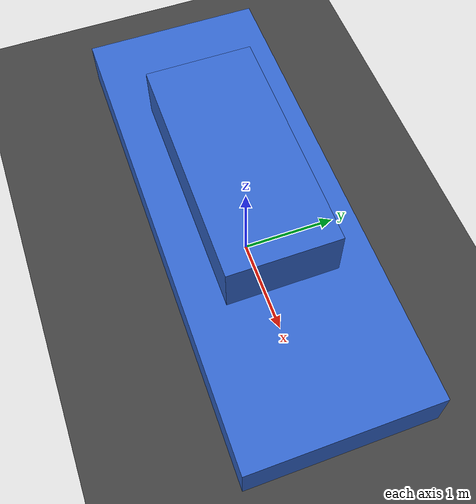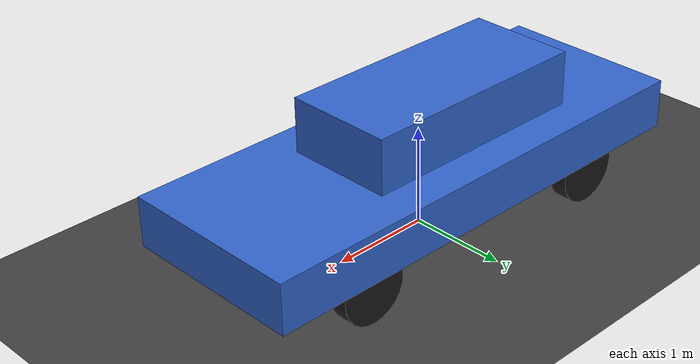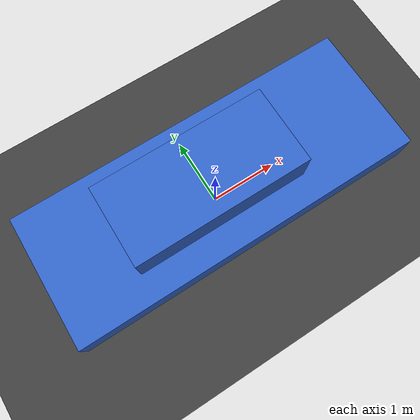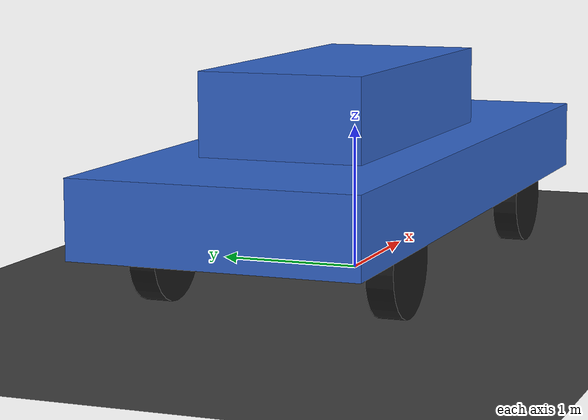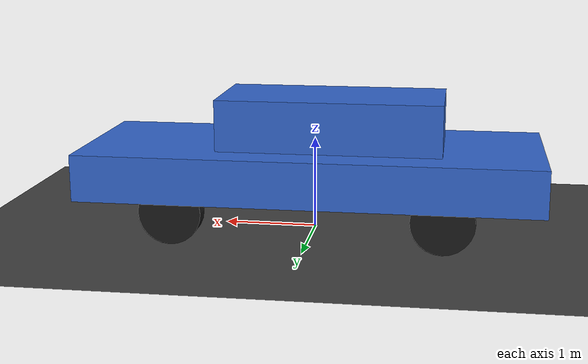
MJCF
<mujoco model="apollo_ackermann_vehicle">
  <compiler angle="radian" coordinate="local"/>

  <option timestep="0.002" gravity="0 0 -9.81" integrator="implicitfast">
    <flag contact="enable"/>
  </option>

  <default>
    <geom contype="1" conaffinity="1" condim="4" friction="1.2 0.01 0.001"/>
    <joint damping="1.0"/>
  </default>

  <asset>
    <texture name="grid" type="2d" builtin="checker" width="512" height="512" rgb1="0.2 0.2 0.2" rgb2="0.3 0.3 0.3"/>
    <material name="grid_mat" texture="grid" texrepeat="50 50" reflectance="0.1"/>
    <material name="chassis_mat" rgba="0.2 0.4 0.8 1.0"/>
    <material name="wheel_mat" rgba="0.1 0.1 0.1 1.0"/>
  </asset>

  <worldbody>
    <light pos="0 0 10" dir="0 0 -1" diffuse="0.8 0.8 0.8"/>
    <geom name="ground" type="plane" size="500 500 0.1" material="grid_mat"/>

    <body name="ego_vehicle" pos="0 0 0.335">
      <freejoint name="vehicle_freejoint"/>

      <!-- Main chassis footprint matches the Lincoln MKZ dimensions. -->
      <geom name="chassis_geom" type="box" size="2.4665 0.93 0.25" pos="0.0011 0 0.35" mass="1500" material="chassis_mat"/>
      <geom name="cabin_geom" type="box" size="1.2 0.55 0.3" pos="-0.2 0 0.85" mass="100" material="chassis_mat"/>

      <!-- Front-Left Wheel Assembly (Steerable) -->
      <body name="wheel_fl_knuckle" pos="1.4224 0.79 0.0">
        <inertial pos="0 0 0" mass="5" diaginertia="0.05 0.05 0.05"/>
        <joint name="steer_fl_joint" type="hinge" axis="0 0 1" range="-0.610865 0.610865" damping="20"/>
        <body name="wheel_fl" pos="0 0 0">
          <joint name="wheel_fl_joint" type="hinge" axis="0 1 0" damping="0.1"/>
          <geom name="wheel_fl_geom" type="cylinder" size="0.335 0.09" zaxis="0 1 0" mass="25" material="wheel_mat"/>
        </body>
      </body>

      <!-- Front-Right Wheel Assembly (Steerable) -->
      <body name="wheel_fr_knuckle" pos="1.4224 -0.79 0.0">
        <inertial pos="0 0 0" mass="5" diaginertia="0.05 0.05 0.05"/>
        <joint name="steer_fr_joint" type="hinge" axis="0 0 1" range="-0.610865 0.610865" damping="20"/>
        <body name="wheel_fr" pos="0 0 0">
          <joint name="wheel_fr_joint" type="hinge" axis="0 1 0" damping="0.1"/>
          <geom name="wheel_fr_geom" type="cylinder" size="0.335 0.09" zaxis="0 1 0" mass="25" material="wheel_mat"/>
        </body>
      </body>

      <!-- Rear-Left Wheel Assembly (Steerable for 4WS) -->
      <body name="wheel_rl_knuckle" pos="-1.4224 0.79 0.0">
        <inertial pos="0 0 0" mass="5" diaginertia="0.05 0.05 0.05"/>
        <joint name="steer_rl_joint" type="hinge" axis="0 0 1" range="-0.610865 0.610865" damping="20"/>
        <body name="wheel_rl" pos="0 0 0">
          <joint name="wheel_rl_joint" type="hinge" axis="0 1 0" damping="0.1"/>
          <geom name="wheel_rl_geom" type="cylinder" size="0.335 0.09" zaxis="0 1 0" mass="25" material="wheel_mat"/>
        </body>
      </body>

      <!-- Rear-Right Wheel Assembly (Steerable for 4WS) -->
      <body name="wheel_rr_knuckle" pos="-1.4224 -0.79 0.0">
        <inertial pos="0 0 0" mass="5" diaginertia="0.05 0.05 0.05"/>
        <joint name="steer_rr_joint" type="hinge" axis="0 0 1" range="-0.610865 0.610865" damping="20"/>
        <body name="wheel_rr" pos="0 0 0">
          <joint name="wheel_rr_joint" type="hinge" axis="0 1 0" damping="0.1"/>
          <geom name="wheel_rr_geom" type="cylinder" size="0.335 0.09" zaxis="0 1 0" mass="25" material="wheel_mat"/>
        </body>
      </body>
    </body>
  </worldbody>

  <contact>
    <exclude body1="ego_vehicle" body2="wheel_fl"/>
    <exclude body1="ego_vehicle" body2="wheel_fr"/>
    <exclude body1="ego_vehicle" body2="wheel_rl"/>
    <exclude body1="ego_vehicle" body2="wheel_rr"/>
    <exclude body1="ego_vehicle" body2="wheel_fl_knuckle"/>
    <exclude body1="ego_vehicle" body2="wheel_fr_knuckle"/>
    <exclude body1="wheel_fl_knuckle" body2="wheel_fl"/>
    <exclude body1="wheel_fr_knuckle" body2="wheel_fr"/>
    <exclude body1="ego_vehicle" body2="wheel_rl_knuckle"/>
    <exclude body1="ego_vehicle" body2="wheel_rr_knuckle"/>
    <exclude body1="wheel_rl_knuckle" body2="wheel_rl"/>
    <exclude body1="wheel_rr_knuckle" body2="wheel_rr"/>
  </contact>

  <actuator>
    <!-- Steering Position Actuators -->
    <position name="steer_fl" joint="steer_fl_joint" kp="15000" kv="500" ctrlrange="-0.610865 0.610865"/>
    <position name="steer_fr" joint="steer_fr_joint" kp="15000" kv="500" ctrlrange="-0.610865 0.610865"/>
    <position name="steer_rl" joint="steer_rl_joint" kp="15000" kv="500" ctrlrange="-0.610865 0.610865"/>
    <position name="steer_rr" joint="steer_rr_joint" kp="15000" kv="500" ctrlrange="-0.610865 0.610865"/>

    <!-- Drive / Brake Torque Actuators (all-wheel torque allocation) -->
    <motor name="drive_fl" joint="wheel_fl_joint" ctrlrange="-3000 3000"/>
    <motor name="drive_fr" joint="wheel_fr_joint" ctrlrange="-3000 3000"/>
    <motor name="drive_rl" joint="wheel_rl_joint" ctrlrange="-3000 3000"/>
    <motor name="drive_rr" joint="wheel_rr_joint" ctrlrange="-3000 3000"/>
  </actuator>
</mujoco>
